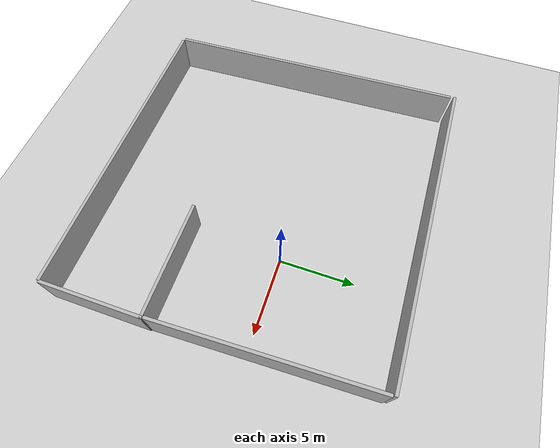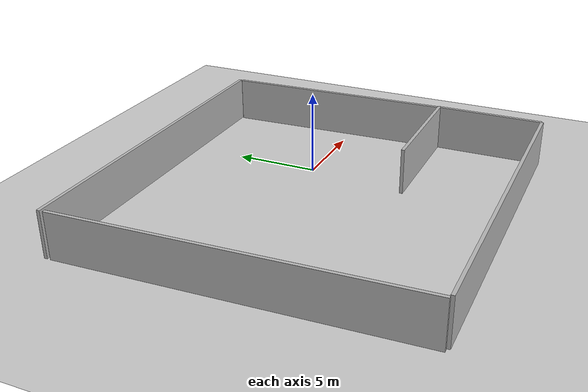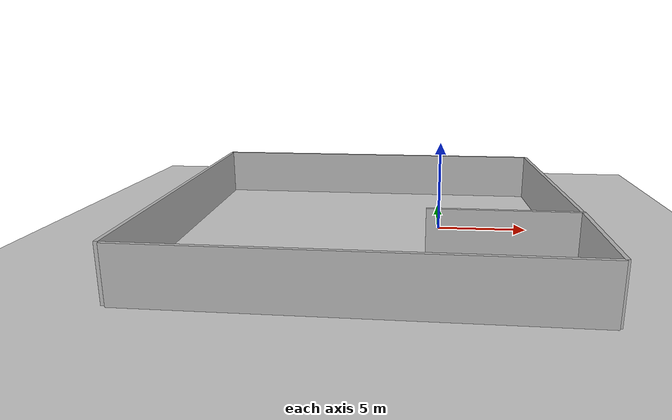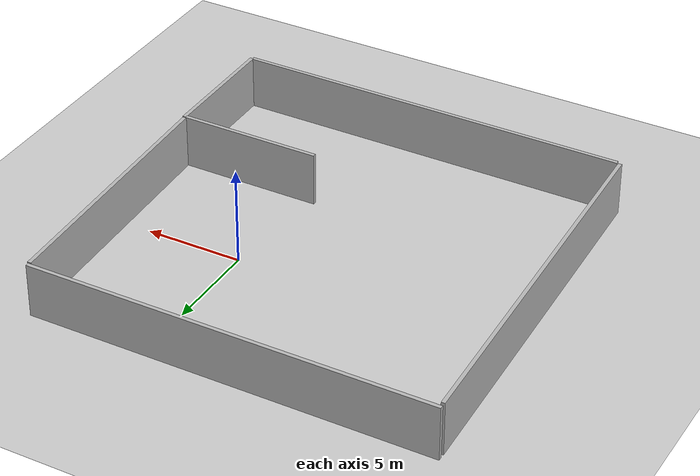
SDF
<sdf version="1.4">
 <world name="default">
  <light name="sun" type="directional">
   <pose>0 0 10 0 -0 0</pose>
   <diffuse>0.8 0.8 0.8 1</diffuse>
   <specular>0.2 0.2 0.2 1</specular>
   <attenuation>
    <range>1000</range>
    <constant>0.9</constant>
    <linear>0.01</linear>
    <quadratic>0.001</quadratic>
   </attenuation>
   <direction>-0.5 0.1 -0.9</direction>
  </light>
  <model name="ground_plane">
   <static>1</static>
   <link name="link">
    <collision name="collision">
     <geometry><plane><normal>0 0 1</normal><size>100 100</size></plane></geometry>
     <surface><friction><ode><mu>100</mu><mu2>50</mu2></ode></friction></surface>
    </collision>
    <visual name="visual">
     <cast_shadows>0</cast_shadows>
     <geometry><plane><normal>0 0 1</normal><size>100 100</size></plane></geometry>
     <material>
      <script><uri>file://media/materials/scripts/gazebo.material</uri><name>Gazebo/Grey</name></script>
     </material>
    </visual>
    <velocity_decay><linear>0</linear><angular>0</angular></velocity_decay>
   </link>
  </model>
  <physics type="ode">
   <max_step_size>0.001</max_step_size>
   <real_time_factor>1</real_time_factor>
   <real_time_update_rate>1000</real_time_update_rate>
   <gravity>0 0 -9.8</gravity>
  </physics>
  <scene><ambient>0.4 0.4 0.4 1</ambient><background>0.7 0.7 0.7 1</background><shadows>1</shadows></scene>
  <spherical_coordinates>
   <surface_model>EARTH_WGS84</surface_model>
   <latitude_deg>0</latitude_deg>
   <longitude_deg>0</longitude_deg>
   <elevation>0</elevation>
   <heading_deg>0</heading_deg>
  </spherical_coordinates>
  <model name="new_wall">
   <static>1</static>
   <link name="link">
    <pose>0 0 1.4 0 -0 0</pose>
    <collision name="collision"><geometry><box><size>7.5 0.2 2.8</size></box></geometry></collision>
    <visual name="visual">
     <cast_shadows>0</cast_shadows>
     <geometry><box><size>7.5 0.2 2.8</size></box></geometry>
     <material>
      <script>
       <uri>model://new_wall/materials/scripts</uri>
       <uri>model://new_wall/materials/textures</uri>
       <name>vrc/new_wall_design</name>
      </script>
     </material>
    </visual>
    <velocity_decay><linear>0</linear><angular>0</angular></velocity_decay>
   </link>
   <pose>3 -6 0 0 -0 0</pose>
  </model>
  <model name="new_wall_0">
   <static>1</static>
   <link name="link">
    <pose>0 0 1.4 0 -0 0</pose>
    <collision name="collision"><geometry><box><size>14 0.2 2.8</size></box></geometry></collision>
    <visual name="visual">
     <cast_shadows>0</cast_shadows>
     <geometry><box><size>14 0.2 2.8</size></box></geometry>
     <material>
      <script>
       <uri>model://new_wall/materials/scripts</uri>
       <uri>model://new_wall/materials/textures</uri>
       <name>vrc/new_wall_stone</name>
      </script>
     </material>
    </visual>
    <velocity_decay><linear>0</linear><angular>0</angular></velocity_decay>
   </link>
   <pose>6.32927 1.11707 0 0 -0 1.61152</pose>
  </model>
  <model name="new_wall_1">
   <static>1</static>
   <link name="link">
    <pose>0 0 1.4 0 -0 0</pose>
    <collision name="collision"><geometry><box><size>21 0.2 2.8</size></box></geometry></collision>
    <visual name="visual">
     <cast_shadows>0</cast_shadows>
     <geometry><box><size>21 0.2 2.8</size></box></geometry>
     <material>
      <script>
       <uri>model://new_wall/materials/scripts</uri>
       <uri>model://new_wall/materials/textures</uri>
       <name>vrc/new_wall_simple</name>
      </script>
     </material>
    </visual>
    <velocity_decay><linear>0</linear><angular>0</angular></velocity_decay>
   </link>
   <pose>-4.44665 8.27245 0 0 -0 0</pose>
  </model>
  <model name="new_wall_3">
   <static>1</static>
   <link name="link">
    <pose>0 0 1.4 0 -0 0</pose>
    <collision name="collision"><geometry><box><size>20.5 0.2 2.8</size></box></geometry></collision>
    <visual name="visual">
     <cast_shadows>0</cast_shadows>
     <geometry><box><size>20.5 0.2 2.8</size></box></geometry>
     <material>
      <script>
       <uri>model://new_wall/materials/scripts</uri>
       <uri>model://new_wall/materials/textures</uri>
       <name>vrc/new_wall_pebbles</name>
      </script>
     </material>
    </visual>
    <velocity_decay><linear>0</linear><angular>0</angular></velocity_decay>
   </link>
   <pose>-3.57923 -12.5667 0 0 -0 0</pose>
  </model>
  <model name="new_wall_4">
   <static>1</static>
   <link name="link">
    <pose>0 0 1.4 0 -0 0</pose>
    <collision name="collision"><geometry><box><size>20.5 0.2 2.8</size></box></geometry></collision>
    <visual name="visual">
     <cast_shadows>0</cast_shadows>
     <geometry><box><size>20.5 0.2 2.8</size></box></geometry>
     <material>
      <script>
       <uri>model://new_wall/materials/scripts</uri>
       <uri>model://new_wall/materials/textures</uri>
       <name>vrc/new_wall_triangles</name>
      </script>
     </material>
    </visual>
    <velocity_decay><linear>0</linear><angular>0</angular></velocity_decay>
   </link>
   <pose>-14.4262 -2.25567 0 0 0 -1.52893</pose>
  </model>
  <model name="new_wall_5">
   <static>1</static>
   <link name="link">
    <pose>0 0 1.4 0 -0 0</pose>
    <collision name="collision"><geometry><box><size>6.6 0.2 2.8</size></box></geometry></collision>
    <visual name="visual">
     <cast_shadows>0</cast_shadows>
     <geometry><box><size>6.6 0.2 2.8</size></box></geometry>
     <material>
      <script>
       <uri>model://new_wall/materials/scripts</uri>
       <uri>model://new_wall/materials/textures</uri>
       <name>vrc/new_wall_brick</name>
      </script>
     </material>
    </visual>
    <velocity_decay><linear>0</linear><angular>0</angular></velocity_decay>
   </link>
   <pose>6.68446 -9.24426 0 0 -0 1.57748</pose>
  </model>
 </world>
</sdf>
